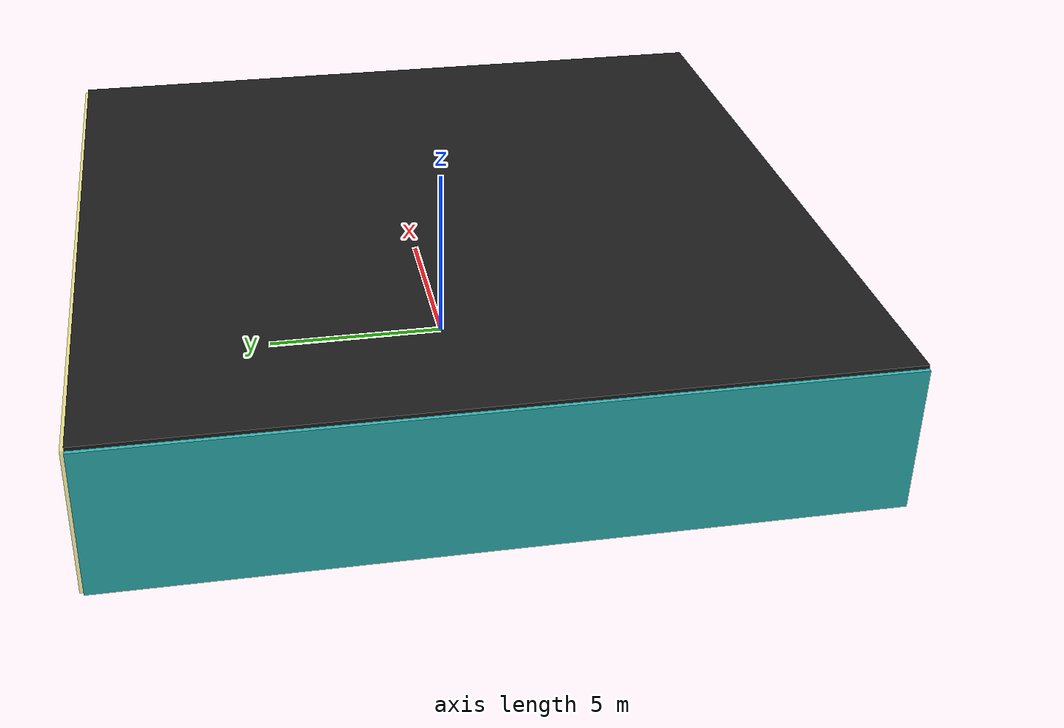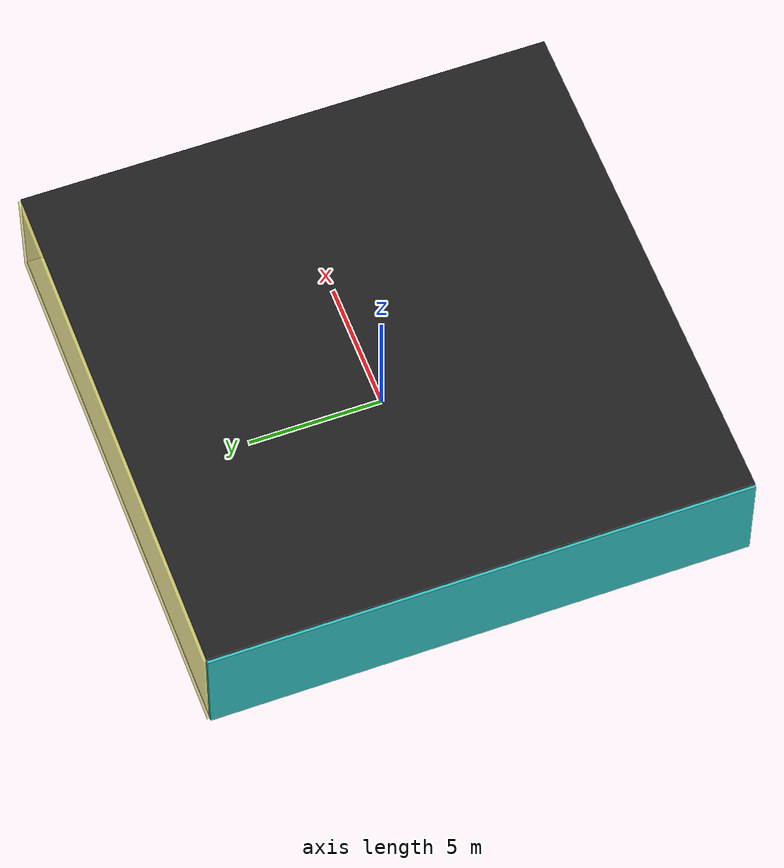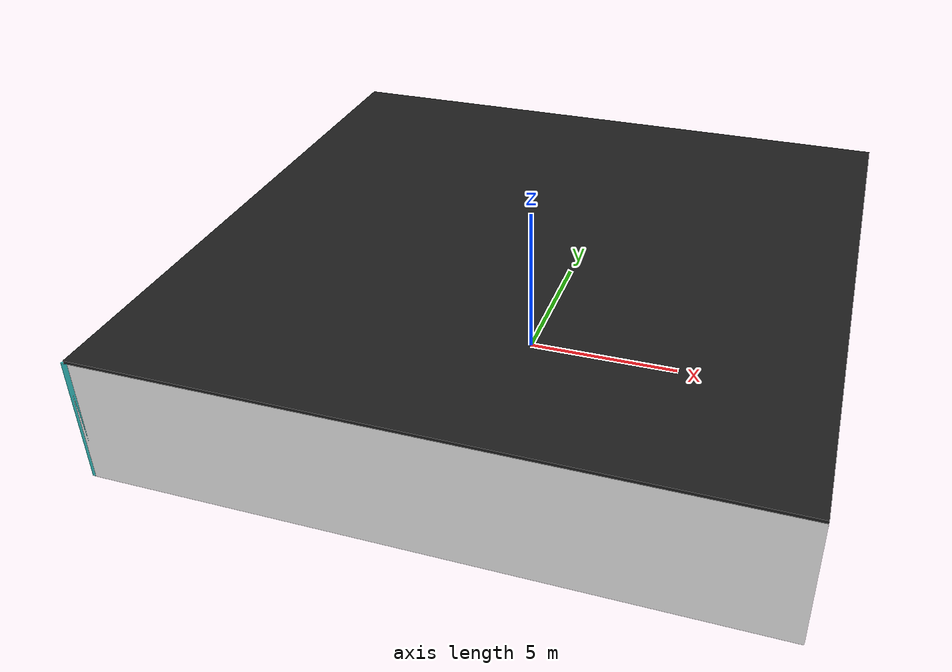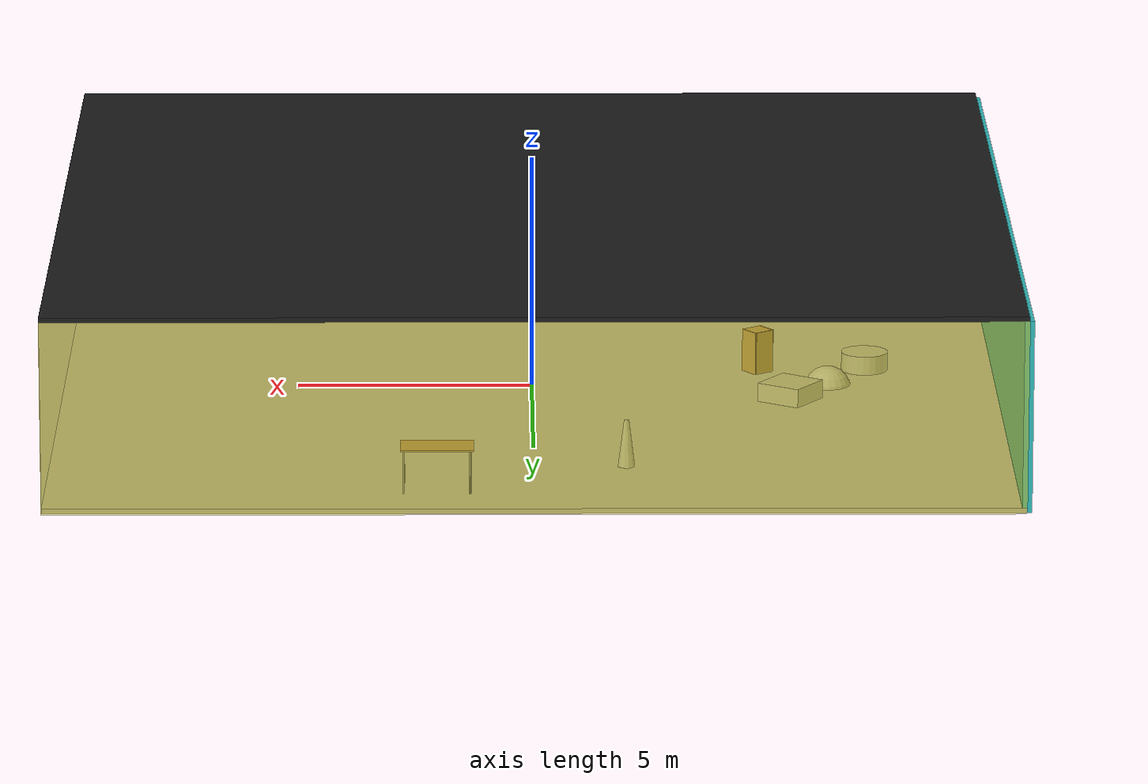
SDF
<sdf version="1.4">
 <world name="default">
  <physics type="ode">
   <max_step_size>0.001</max_step_size>
   <real_time_factor>1</real_time_factor>
   <real_time_update_rate>1000</real_time_update_rate>
   <gravity>0 0 -9.8</gravity>
  </physics>
  <scene><ambient>0.4 0.4 0.4 1</ambient><background>0.7 0.7 0.7 1</background><shadows>1</shadows></scene>
  <model name="Surrounding">
   <static>1</static>
   <link name="Ceiling">
    <collision name="Ceiling_Collision"><geometry><box><size>20 20 0.1</size></box></geometry></collision>
    <visual name="Ceiling_Visual">
     <geometry><box><size>20 20 0.1</size></box></geometry>
     <material>
      <script><uri>file://media/materials/scripts/gazebo.material</uri><name>Gazebo/FlatBlack</name></script>
     </material>
    </visual>
    <pose>0 0 4.05 0 0 0</pose>
   </link>
   <link name="Wall_South">
    <collision name="Wall_South_Collision">
     <geometry><box><size>20 0 4</size></box></geometry>
     <pose>0 0 2 0 -0 0</pose>
    </collision>
    <visual name="Wall_South_Visual">
     <pose>0 0 2 0 -0 0</pose>
     <geometry><box><size>20 0 4</size></box></geometry>
     <material>
      <script><uri>file://media/materials/scripts/gazebo.material</uri><name>Gazebo/WhiteGlow</name></script>
     </material>
    </visual>
    <velocity_decay><linear>0</linear><angular>0</angular></velocity_decay>
    <pose>0 -10 0 0 -0 0</pose>
   </link>
   <link name="Wall_East">
    <collision name="Wall_21_Collision">
     <geometry><box><size>20 0 4</size></box></geometry>
     <pose>0 0 2 0 -0 0</pose>
    </collision>
    <visual name="Wall_21_Visual">
     <pose>0 0 2 0 -0 0</pose>
     <geometry><box><size>20 0 4</size></box></geometry>
     <material>
      <script><uri>file://media/materials/scripts/gazebo.material</uri><name>Gazebo/WhiteGlow</name></script>
     </material>
    </visual>
    <velocity_decay><linear>0</linear><angular>0</angular></velocity_decay>
    <pose>10 0 0 0 -0 1.5708</pose>
   </link>
   <link name="Wall_North">
    <collision name="Wall_22_Collision">
     <geometry><box><size>20 0.2 4</size></box></geometry>
     <pose>0 0 2 0 -0 0</pose>
    </collision>
    <visual name="Wall_22_Visual">
     <pose>0 0 2 0 -0 0</pose>
     <geometry><box><size>20 0.2 4</size></box></geometry>
     <material>
      <script>
       <uri>file://media/materials/scripts/gazebo.material</uri>
       <name>Gazebo/YellowTransparent</name>
      </script>
     </material>
    </visual>
    <velocity_decay><linear>0</linear><angular>0</angular></velocity_decay>
    <pose>0 10 0 0 -0 0</pose>
   </link>
   <link name="Wall_West">
    <collision name="Wall_23_Collision">
     <geometry><box><size>20 0.2 4</size></box></geometry>
     <pose>0 0 2 0 -0 0</pose>
    </collision>
    <visual name="Wall_23_Visual">
     <pose>0 0 2 0 -0 0</pose>
     <geometry><box><size>20 0.2 4</size></box></geometry>
     <material>
      <script>
       <uri>file://media/materials/scripts/gazebo.material</uri>
       <name>Gazebo/TurquoiseGlowOutline</name>
      </script>
     </material>
    </visual>
    <velocity_decay><linear>0</linear><angular>0</angular></velocity_decay>
    <pose>-10 0 0 0 0 -1.5708</pose>
   </link>
   <link name="Ground_link">
    <collision name="collision">
     <pose>0 0 .05 0 -0 0</pose>
     <geometry><box><size>20 20 0.1</size></box></geometry>
    </collision>
    <visual name="visual">
     <pose>0 0 .05 0 -0 0</pose>
     <geometry><box><size>20 20 0.1</size></box></geometry>
     <material>
      <script><uri>file://media/materials/scripts/gazebo.material</uri><name>Gazebo/JointAnchor</name></script>
     </material>
    </visual>
   </link>
   <static>1</static>
  </model>
  <spherical_coordinates>
   <surface_model>EARTH_WGS84</surface_model>
   <latitude_deg>0</latitude_deg>
   <longitude_deg>0</longitude_deg>
   <elevation>0</elevation>
   <heading_deg>0</heading_deg>
  </spherical_coordinates>
  <light name="lightball_0" type="diffuse">
   <diffuse>0.8 0.8 0.8 1</diffuse>
   <specular>0.2 0.2 0.2 1</specular>
   <attenuation>
    <range>100</range>
    <constant>0.7</constant>
    <linear>0.01</linear>
    <quadratic>0.001</quadratic>
   </attenuation>
   <direction>-0.5 0.1 -0.9</direction>
   <pose>-8.72602126446 -5.4889213673 2.30814129281 0 0 0</pose>
  </light>
  <light name="lightball_1" type="diffuse">
   <diffuse>0.8 0.8 0.8 1</diffuse>
   <specular>0.2 0.2 0.2 1</specular>
   <attenuation>
    <range>100</range>
    <constant>0.7</constant>
    <linear>0.01</linear>
    <quadratic>0.001</quadratic>
   </attenuation>
   <direction>-0.5 0.1 -0.9</direction>
   <pose>5.54997239641 -7.03198484992 3.78895510442 0 0 0</pose>
  </light>
  <light name="lightball_2" type="diffuse">
   <diffuse>0.8 0.8 0.8 1</diffuse>
   <specular>0.2 0.2 0.2 1</specular>
   <attenuation>
    <range>100</range>
    <constant>0.7</constant>
    <linear>0.01</linear>
    <quadratic>0.001</quadratic>
   </attenuation>
   <direction>-0.5 0.1 -0.9</direction>
   <pose>-8.65757667928 3.49549226081 2.28115977518 0 0 0</pose>
  </light>
  <light name="lightball_3" type="diffuse">
   <diffuse>0.8 0.8 0.8 1</diffuse>
   <specular>0.2 0.2 0.2 1</specular>
   <attenuation>
    <range>100</range>
    <constant>0.7</constant>
    <linear>0.01</linear>
    <quadratic>0.001</quadratic>
   </attenuation>
   <direction>-0.5 0.1 -0.9</direction>
   <pose>-1.11405893994 0.749253816651 1.13998156528 0 0 0</pose>
  </light>
  <light name="lightball_4" type="diffuse">
   <diffuse>0.8 0.8 0.8 1</diffuse>
   <specular>0.2 0.2 0.2 1</specular>
   <attenuation>
    <range>100</range>
    <constant>0.7</constant>
    <linear>0.01</linear>
    <quadratic>0.001</quadratic>
   </attenuation>
   <direction>-0.5 0.1 -0.9</direction>
   <pose>8.68554303648 9.1202943128 2.66146690453 0 0 0</pose>
  </light>
  <light name="lightball_5" type="diffuse">
   <diffuse>0.8 0.8 0.8 1</diffuse>
   <specular>0.2 0.2 0.2 1</specular>
   <attenuation>
    <range>100</range>
    <constant>0.7</constant>
    <linear>0.01</linear>
    <quadratic>0.001</quadratic>
   </attenuation>
   <direction>-0.5 0.1 -0.9</direction>
   <pose>-7.22326245163 8.6778952527 2.01939684209 0 0 0</pose>
  </light>
  <light name="lightball_6" type="diffuse">
   <diffuse>0.8 0.8 0.8 1</diffuse>
   <specular>0.2 0.2 0.2 1</specular>
   <attenuation>
    <range>100</range>
    <constant>0.7</constant>
    <linear>0.01</linear>
    <quadratic>0.001</quadratic>
   </attenuation>
   <direction>-0.5 0.1 -0.9</direction>
   <pose>6.64377721856 -4.77808703774 0.512772055509 0 0 0</pose>
  </light>
  <light name="lightball_7" type="diffuse">
   <diffuse>0.8 0.8 0.8 1</diffuse>
   <specular>0.2 0.2 0.2 1</specular>
   <attenuation>
    <range>100</range>
    <constant>0.7</constant>
    <linear>0.01</linear>
    <quadratic>0.001</quadratic>
   </attenuation>
   <direction>-0.5 0.1 -0.9</direction>
   <pose>-5.48277405005 2.20607220936 1.07172978002 0 0 0</pose>
  </light>
  <light name="lightball_8" type="diffuse">
   <diffuse>0.8 0.8 0.8 1</diffuse>
   <specular>0.2 0.2 0.2 1</specular>
   <attenuation>
    <range>100</range>
    <constant>0.7</constant>
    <linear>0.01</linear>
    <quadratic>0.001</quadratic>
   </attenuation>
   <direction>-0.5 0.1 -0.9</direction>
   <pose>8.56701750835 -6.10528069849 1.51571648677 0 0 0</pose>
  </light>
  <light name="lightball_9" type="diffuse">
   <diffuse>0.8 0.8 0.8 1</diffuse>
   <specular>0.2 0.2 0.2 1</specular>
   <attenuation>
    <range>100</range>
    <constant>0.7</constant>
    <linear>0.01</linear>
    <quadratic>0.001</quadratic>
   </attenuation>
   <direction>-0.5 0.1 -0.9</direction>
   <pose>-4.02576856928 -2.1336020995 0.835612446258 0 0 0</pose>
  </light>
  <light name="lightball_10" type="diffuse">
   <diffuse>0.8 0.8 0.8 1</diffuse>
   <specular>0.2 0.2 0.2 1</specular>
   <attenuation>
    <range>100</range>
    <constant>0.7</constant>
    <linear>0.01</linear>
    <quadratic>0.001</quadratic>
   </attenuation>
   <direction>-0.5 0.1 -0.9</direction>
   <pose>8.1179942482 8.869299074 3.56252986429 0 0 0</pose>
  </light>
  <include>
   <uri>model://textured_shapes</uri>
   <pose>-6.31737422034 0.310894655152 0 0 0 2.5467365204</pose>
  </include>
  <include><uri>model://cabinet</uri><pose>-4.85497196158 -0.822901509628 0 0 0 2.20540744847</pose></include>
  <include>
   <uri>model://construction_cone</uri>
   <pose>-1.9165148415 6.79626341938 0 0 0 1.32943368268</pose>
  </include>
  <include><uri>model://table</uri><pose>1.98411502865 8.48338911698 0 0 0 0.00518280266532</pose></include>
  <include><uri>model://cabinet</uri><pose>3.53923128737 -8.2701483049 0 0 0 0.293952846069</pose></include>
 </world>
</sdf>

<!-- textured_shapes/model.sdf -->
<sdf version="1.6">
  <model name="textured_shapes">
    <pose>0 0 0.5 0 0 0</pose>
    <link name="box">
      <pose>0 -1.5 0 0 0 0</pose>
      <collision name="collision">
        <geometry>
          <box>
            <size>1 1 1</size>
          </box>
        </geometry>
      </collision>
      <visual name="visual">
        <geometry>
          <box>
            <size>1 1 1</size>
          </box>
        </geometry>
        <material>
          <script>
            <uri>model://../model_source/models/textured_shapes/materials/scripts</uri>
            <uri>model://../model_source/models/textured_shapes/materials/textures</uri>
            <name>TexturedShape/Squares</name>
          </script>
        </material>
      </visual>
    </link>
    <link name="sphere">
      <collision name="collision">
        <geometry>
          <sphere>
            <radius>0.5</radius>
          </sphere>
        </geometry>
      </collision>
      <visual name="visual">
        <geometry>
          <sphere>
            <radius>0.5</radius>
          </sphere>
        </geometry>
        <material>
          <script>
            <uri>model://../model_source/models/textured_shapes/materials/scripts</uri>
            <uri>model://../model_source/models/textured_shapes/materials/textures</uri>
            <name>TexturedShape/Squares</name>
          </script>
        </material>
      </visual>
    </link>
    <link name="cylinder">
      <pose>0 1.5 0 0 0 0</pose>
      <collision name="collision">
        <geometry>
          <cylinder>
            <radius>0.5</radius>
            <length>1</length>
          </cylinder>
        </geometry>
      </collision>
      <visual name="visual">
        <geometry>
          <cylinder>
            <radius>0.5</radius>
            <length>1</length>
          </cylinder>
        </geometry>
        <material>
          <script>
            <uri>model://../model_source/models/textured_shapes/materials/scripts</uri>
            <uri>model://../model_source/models/textured_shapes/materials/textures</uri>
            <name>TexturedShape/Squares</name>
          </script>
        </material>
      </visual>
    </link>
  </model>
</sdf>

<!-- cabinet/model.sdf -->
<sdf version="1.5">
  <model name="cabinet">
    <static>true</static>
    <link name="cabinet_bottom_plate">
      <inertial>
        <pose>0 0 -1 0 0 0</pose>
        <inertia>
          <ixx>2.050000</ixx>
          <ixy>0</ixy>
          <ixz>0</ixz>
          <iyy>2.050000</iyy>
          <iyz>0</iyz>
          <izz>2.050000</izz>
        </inertia>
        <mass>25.000000</mass>
      </inertial>
      <collision name="cabinet_bottom_plate_geom">
        <pose>0 0 0.010000 0 0 0</pose>
        <geometry>
          <box>
            <size>0.450000 0.450000 0.020000</size>
          </box>
        </geometry>
      </collision>
      <visual name="cabinet_bottom_plate_geom_visual">
        <pose>0 0 0.010000 0 0 0</pose>
        <geometry>
          <box>
            <size>0.450000 0.450000 0.020000</size>
          </box>
        </geometry>
        <material>
          <script>
            <uri>model://media/materials/scripts/gazebo.material</uri>
            <name>Gazebo/Wood</name>
          </script>
        </material>
      </visual>
      <collision name="cabinet_bottom_plate_geom_cabinet_back_plate">
        <pose>0.235000 0 0.510000 0 0 0</pose>
        <geometry>
          <box>
            <size>0.020000 0.450000 1.020000</size>
          </box>
        </geometry>
      </collision>
      <visual name="cabinet_bottom_plate_geom_cabinet_back_plate_visual">
        <pose>0.235000 0 0.510000 0 0 0</pose>
        <geometry>
          <box>
            <size>0.020000 0.450000 1.020000</size>
          </box>
        </geometry>
        <material>
          <script>
            <uri>model://media/materials/scripts/gazebo.material</uri>
            <name>Gazebo/Wood</name>
          </script>
        </material>
      </visual>
      <collision name="cabinet_bottom_plate_geom_cabinet_left_plate">
        <pose>0 0.235000 0.510000 0 0 0</pose>
        <geometry>
          <box>
            <size>0.450000 0.020000 1.020000</size>
          </box>
        </geometry>
      </collision>
      <visual name="cabinet_bottom_plate_geom_cabinet_left_plate_visual">
        <pose>0 0.235000 0.510000 0 0 0</pose>
        <geometry>
          <box>
            <size>0.450000 0.020000 1.020000</size>
          </box>
        </geometry>
        <material>
          <script>
            <uri>model://media/materials/scripts/gazebo.material</uri>
            <name>Gazebo/Wood</name>
          </script>
        </material>
      </visual>
      <collision name="cabinet_bottom_plate_geom_cabinet_middle_plate">
        <pose>0 0 0.510000 0 0 0</pose>
        <geometry>
          <box>
            <size>0.450000 0.450000 0.020000</size>
          </box>
        </geometry>
      </collision>
      <visual name="cabinet_bottom_plate_geom_cabinet_middle_plate_visual">
        <pose>0 0 0.510000 0 0 0</pose>
        <geometry>
          <box>
            <size>0.450000 0.450000 0.020000</size>
          </box>
        </geometry>
        <material>
          <script>
            <uri>model://media/materials/scripts/gazebo.material</uri>
            <name>Gazebo/Wood</name>
          </script>
        </material>
      </visual>
      <collision name="cabinet_bottom_plate_geom_cabinet_right_plate">
        <pose>0 -0.235000 0.510000 0 0 0</pose>
        <geometry>
          <box>
            <size>0.450000 0.020000 1.020000</size>
          </box>
        </geometry>
      </collision>
      <visual name="cabinet_bottom_plate_geom_cabinet_right_plate_visual">
        <pose>0 -0.235000 0.510000 0 0 0</pose>
        <geometry>
          <box>
            <size>0.450000 0.020000 1.020000</size>
          </box>
        </geometry>
        <material>
          <script>
            <uri>model://media/materials/scripts/gazebo.material</uri>
            <name>Gazebo/Wood</name>
          </script>
        </material>
      </visual>
      <collision name="cabinet_bottom_plate_geom_cabinet_top_plate">
        <pose>0 0 1.010000 0 0 0</pose>
        <geometry>
          <box>
            <size>0.450000 0.450000 0.020000</size>
          </box>
        </geometry>
      </collision>
      <visual name="cabinet_bottom_plate_geom_cabinet_top_plate_visual">
        <pose>0 0 1.010000 0 0 0</pose>
        <geometry>
          <box>
            <size>0.450000 0.450000 0.020000</size>
          </box>
        </geometry>
        <material>
          <script>
            <uri>model://media/materials/scripts/gazebo.material</uri>
            <name>Gazebo/Wood</name>
          </script>
        </material>
      </visual>
    </link>
  </model>
</sdf>

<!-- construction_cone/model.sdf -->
<sdf version="1.5">
  <model name="Construction Cone">
    <link name="link">
      <collision name="collision">
        <geometry>
          <mesh>
            <scale>10 10 10</scale>
            <uri>file://isr-testbed/construction_cone/meshes/construction_cone.dae</uri>
          </mesh>
        </geometry>
      </collision>
      <visual name="visual">
        <geometry>
          <mesh>
            <scale>10 10 10</scale>
            <uri>file://isr-testbed/construction_cone/meshes/construction_cone.dae</uri>
          </mesh>
        </geometry>
      </visual>
    </link>
  </model>
</sdf>

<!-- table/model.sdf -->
<sdf version="1.5">
  <model name="table">
    <static>true</static>
    <link name="link">
      <collision name="surface">
        <pose>0 0 1.0 0 0 0</pose>
        <geometry>
          <box>
            <size>1.5 0.8 0.03</size>
          </box>
        </geometry>
        <surface>
          <friction>
            <ode>
              <mu>0.6</mu>
              <mu2>0.6</mu2>
            </ode>
          </friction>
        </surface>
      </collision>
      <visual name="visual1">
        <pose>0 0 1.0 0 0 0</pose>
        <geometry>
          <box>
            <size>1.5 0.8 0.03</size>
          </box>
        </geometry>
        <material>
          <script>
            <uri>model://media/materials/scripts/gazebo.material</uri>
            <name>Gazebo/Wood</name>
          </script>
        </material>
      </visual>
      <collision name="front_left_leg">
        <pose>0.68 0.38 0.5 0 0 0</pose>
        <geometry>
          <cylinder>
            <radius>0.02</radius>
            <length>1.0</length>
          </cylinder>
        </geometry>
      </collision>
      <visual name="front_left_leg">
        <pose>0.68 0.38 0.5 0 0 0</pose>
        <geometry>
          <cylinder>
            <radius>0.02</radius>
            <length>1.0</length>
          </cylinder>
        </geometry>
        <material>
          <script>
            <uri>model://media/materials/scripts/gazebo.material</uri>
            <name>Gazebo/Grey</name>
          </script>
        </material>
      </visual>
      <collision name="front_right_leg">
        <pose>0.68 -0.38 0.5 0 0 0</pose>
        <geometry>
          <cylinder>
            <radius>0.02</radius>
            <length>1.0</length>
          </cylinder>
        </geometry>
      </collision>
      <visual name="front_right_leg">
        <pose>0.68 -0.38 0.5 0 0 0</pose>
        <geometry>
          <cylinder>
            <radius>0.02</radius>
            <length>1.0</length>
          </cylinder>
        </geometry>
        <material>
          <script>
            <uri>model://media/materials/scripts/gazebo.material</uri>
            <name>Gazebo/Grey</name>
          </script>
        </material>
      </visual>
      <collision name="back_right_leg">
        <pose>-0.68 -0.38 0.5 0 0 0</pose>
        <geometry>
          <cylinder>
            <radius>0.02</radius>
            <length>1.0</length>
          </cylinder>
        </geometry>
      </collision>
      <visual name="back_right_leg">
        <pose>-0.68 -0.38 0.5 0 0 0</pose>
        <geometry>
          <cylinder>
            <radius>0.02</radius>
            <length>1.0</length>
          </cylinder>
        </geometry>
        <material>
          <script>
            <uri>model://media/materials/scripts/gazebo.material</uri>
            <name>Gazebo/Grey</name>
          </script>
        </material>
      </visual>
      <collision name="back_left_leg">
        <pose>-0.68 0.38 0.5 0 0 0</pose>
        <geometry>
          <cylinder>
            <radius>0.02</radius>
            <length>1.0</length>
          </cylinder>
        </geometry>
      </collision>
      <visual name="back_left_leg">
        <pose>-0.68 0.38 0.5 0 0 0</pose>
        <geometry>
          <cylinder>
            <radius>0.02</radius>
            <length>1.0</length>
          </cylinder>
        </geometry>
        <material>
          <script>
            <uri>model://media/materials/scripts/gazebo.material</uri>
            <name>Gazebo/Grey</name>
          </script>
        </material>
      </visual>
    </link>
  </model>
</sdf>
